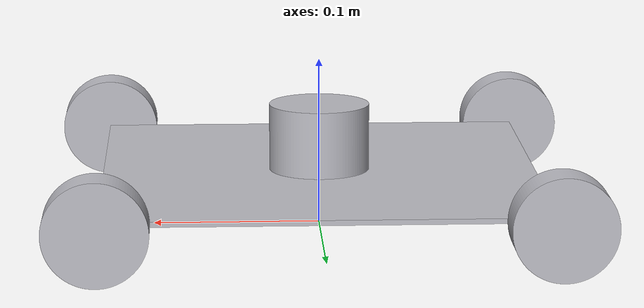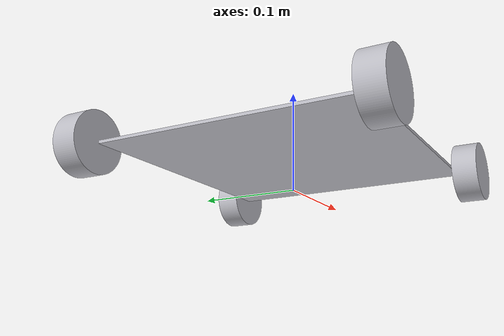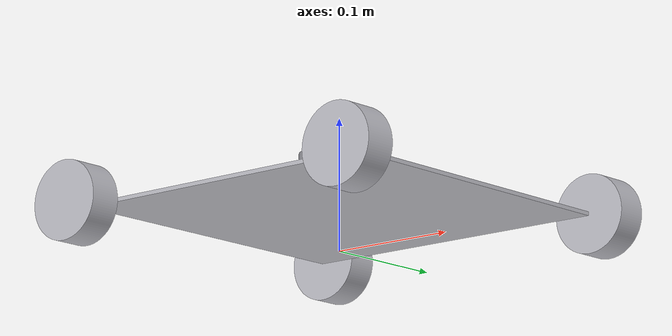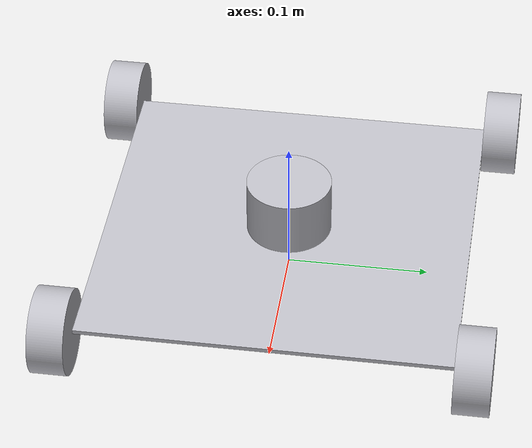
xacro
<?xml version="1.0" ?>
<robot name="test" xmlns:xacro="http://www.ros.org/wiki/xacro">

<xacro:include filename="$(find test_description)/urdf/materials.xacro" />
<xacro:include filename="$(find test_description)/urdf/test.trans" />
<xacro:include filename="$(find test_description)/urdf/test.gazebo" />
<link name="base_link">
  <inertial>
    <origin xyz="0.0 0.0 0.03149999999999999" rpy="0 0 0"/>
    <mass value="1.59198"/>
    <inertia ixx="0.008969" iyy="0.008969" izz="0.017936" ixy="0.0" iyz="0.0" ixz="0.0"/>
  </inertial>
  <visual>
    <origin xyz="0 0 0" rpy="0 0 0"/>
    <geometry>
      <mesh filename="file://$(find test_description)/meshes/base_link.stl" scale="0.001 0.001 0.001"/>
    </geometry>
    <material name="silver"/>
  </visual>
  <collision>
    <origin xyz="0 0 0" rpy="0 0 0"/>
    <geometry>
      <mesh filename="file://$(find test_description)/meshes/base_link.stl" scale="0.001 0.001 0.001"/>
    </geometry>
  </collision>
</link>

<link name="lidar_1">
  <inertial>
    <origin xyz="1.0052123437711858e-17 0.0 0.020000000000000004" rpy="0 0 0"/>
    <mass value="0.8878140839044752"/>
    <inertia ixx="0.000318" iyy="0.000318" izz="0.0004" ixy="0.0" iyz="0.0" ixz="0.0"/>
  </inertial>
  <visual>
    <origin xyz="-0.0 -0.0 -0.033" rpy="0 0 0"/>
    <geometry>
      <mesh filename="file://$(find test_description)/meshes/lidar_1.stl" scale="0.001 0.001 0.001"/>
    </geometry>
    <material name="silver"/>
  </visual>
  <collision>
    <origin xyz="-0.0 -0.0 -0.033" rpy="0 0 0"/>
    <geometry>
      <mesh filename="file://$(find test_description)/meshes/lidar_1.stl" scale="0.001 0.001 0.001"/>
    </geometry>
  </collision>
</link>

<link name="left_back_wheel_1">
  <inertial>
    <origin xyz="0.0 -0.012499999999999983 0.0" rpy="0 0 0"/>
    <mass value="0.5548838024402973"/>
    <inertia ixx="0.000154" iyy="0.00025" izz="0.000154" ixy="0.0" iyz="0.0" ixz="0.0"/>
  </inertial>
  <visual>
    <origin xyz="-0.13 0.13 -0.0315" rpy="0 0 0"/>
    <geometry>
      <mesh filename="file://$(find test_description)/meshes/left_back_wheel_1.stl" scale="0.001 0.001 0.001"/>
    </geometry>
    <material name="silver"/>
  </visual>
  <collision>
    <origin xyz="-0.13 0.13 -0.0315" rpy="0 0 0"/>
    <geometry>
      <mesh filename="file://$(find test_description)/meshes/left_back_wheel_1.stl" scale="0.001 0.001 0.001"/>
    </geometry>
  </collision>
</link>

<link name="right_back_wheel_1">
  <inertial>
    <origin xyz="0.0 0.012499999999999983 0.0" rpy="0 0 0"/>
    <mass value="0.5548838024402973"/>
    <inertia ixx="0.000154" iyy="0.00025" izz="0.000154" ixy="-0.0" iyz="0.0" ixz="0.0"/>
  </inertial>
  <visual>
    <origin xyz="-0.13 -0.13 -0.0315" rpy="0 0 0"/>
    <geometry>
      <mesh filename="file://$(find test_description)/meshes/right_back_wheel_1.stl" scale="0.001 0.001 0.001"/>
    </geometry>
    <material name="silver"/>
  </visual>
  <collision>
    <origin xyz="-0.13 -0.13 -0.0315" rpy="0 0 0"/>
    <geometry>
      <mesh filename="file://$(find test_description)/meshes/right_back_wheel_1.stl" scale="0.001 0.001 0.001"/>
    </geometry>
  </collision>
</link>

<link name="left_front_wheel_1">
  <inertial>
    <origin xyz="0.0 -0.012499999999999983 0.0" rpy="0 0 0"/>
    <mass value="0.5548838024402973"/>
    <inertia ixx="0.000154" iyy="0.00025" izz="0.000154" ixy="-0.0" iyz="0.0" ixz="-0.0"/>
  </inertial>
  <visual>
    <origin xyz="0.13 0.13 -0.0315" rpy="0 0 0"/>
    <geometry>
      <mesh filename="file://$(find test_description)/meshes/left_front_wheel_1.stl" scale="0.001 0.001 0.001"/>
    </geometry>
    <material name="silver"/>
  </visual>
  <collision>
    <origin xyz="0.13 0.13 -0.0315" rpy="0 0 0"/>
    <geometry>
      <mesh filename="file://$(find test_description)/meshes/left_front_wheel_1.stl" scale="0.001 0.001 0.001"/>
    </geometry>
  </collision>
</link>

<link name="right_front_wheel_1">
  <inertial>
    <origin xyz="0.0 0.012499999999999983 0.0" rpy="0 0 0"/>
    <mass value="0.5548838024402973"/>
    <inertia ixx="0.000154" iyy="0.00025" izz="0.000154" ixy="0.0" iyz="0.0" ixz="-0.0"/>
  </inertial>
  <visual>
    <origin xyz="0.13 -0.13 -0.0315" rpy="0 0 0"/>
    <geometry>
      <mesh filename="file://$(find test_description)/meshes/right_front_wheel_1.stl" scale="0.001 0.001 0.001"/>
    </geometry>
    <material name="silver"/>
  </visual>
  <collision>
    <origin xyz="0.13 -0.13 -0.0315" rpy="0 0 0"/>
    <geometry>
      <mesh filename="file://$(find test_description)/meshes/right_front_wheel_1.stl" scale="0.001 0.001 0.001"/>
    </geometry>
  </collision>
</link>

<joint name="Rigid 1" type="fixed">
  <origin xyz="0.0 0.0 0.033" rpy="0 0 0"/>
  <parent link="base_link"/>
  <child link="lidar_1"/>
</joint>

<joint name="base_left_back_wheel_joint" type="continuous">
  <origin xyz="0.13 -0.13 0.0315" rpy="0 0 0"/>
  <parent link="base_link"/>
  <child link="left_back_wheel_1"/>
  <axis xyz="0.0 1.0 0.0"/>
</joint>

<joint name="base_right_back_wheel_joint" type="continuous">
  <origin xyz="0.13 0.13 0.0315" rpy="0 0 0"/>
  <parent link="base_link"/>
  <child link="right_back_wheel_1"/>
  <axis xyz="0.0 1.0 0.0"/>
</joint>

<joint name="base_left_front_wheel_joint" type="continuous">
  <origin xyz="-0.13 -0.13 0.0315" rpy="0 0 0"/>
  <parent link="base_link"/>
  <child link="left_front_wheel_1"/>
  <axis xyz="0.0 1.0 0.0"/>
</joint>

<joint name="base_right_front_wheel_joint" type="continuous">
  <origin xyz="-0.13 0.13 0.0315" rpy="0 0 0"/>
  <parent link="base_link"/>
  <child link="right_front_wheel_1"/>
  <axis xyz="0.0 1.0 0.0"/>
</joint>

</robot>

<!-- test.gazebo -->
<robot name="test" xmlns:xacro="http://www.ros.org/wiki/xacro" >

<xacro:property name="body_color" value="Gazebo/Silver" />

<gazebo>
  <plugin name="control" filename="libgazebo_ros_control.so"/>
</gazebo>
<gazebo reference="base_link">
  <material>${body_color}</material>
  <mu1>0.2</mu1>
  <mu2>0.2</mu2>
  <self_collide>true</self_collide>
  <gravity>true</gravity>
</gazebo>

<gazebo reference="lidar_1">
  <material>${body_color}</material>
  <mu1>0.2</mu1>
  <mu2>0.2</mu2>
  <self_collide>true</self_collide>
</gazebo>

<gazebo reference="left_back_wheel_1">
  <material>${body_color}</material>
  <mu1>0.2</mu1>
  <mu2>0.2</mu2>
  <self_collide>true</self_collide>
</gazebo>

<gazebo reference="right_back_wheel_1">
  <material>${body_color}</material>
  <mu1>0.2</mu1>
  <mu2>0.2</mu2>
  <self_collide>true</self_collide>
</gazebo>

<gazebo reference="left_front_wheel_1">
  <material>${body_color}</material>
  <mu1>0.2</mu1>
  <mu2>0.2</mu2>
  <self_collide>true</self_collide>
</gazebo>

<gazebo reference="right_front_wheel_1">
  <material>${body_color}</material>
  <mu1>0.2</mu1>
  <mu2>0.2</mu2>
  <self_collide>true</self_collide>
</gazebo>

     <gazebo>
        <plugin name="diff_drive_controller" filename="libgazebo_ros_diff_drive.so">
            <!-- Update rate in Hz -->
            <update_rate>1000</update_rate>
            <!-- wheels -->
            <left_joint>base_right_front_wheel_joint</left_joint>
            <right_joint>base_left_front_wheel_joint</right_joint>
            <!-- kinematics -->
            <wheel_separation>0.26</wheel_separation>
            <wheel_diameter>0.06</wheel_diameter>
            <!-- output -->
            <publish_odom>true</publish_odom>
            <publish_odom_tf>true</publish_odom_tf>
            <publish_wheel_tf>true</publish_wheel_tf>
            <odometry_topic>odom</odometry_topic>
            <odometry_frame>odom</odometry_frame>
            <robot_base_frame>base_link</robot_base_frame>
        </plugin>
    </gazebo>

<gazebo reference="lidar_1">
    <sensor type="ray" name="rplidar">
      <pose>0 0 0 0 0 0</pose>
      <visualize>true</visualize>
      <update_rate>100</update_rate>
      <ray>
        <scan>
          <horizontal>
            <samples>720</samples>
            <resolution>1</resolution>
            <min_angle>0</min_angle>
            <max_angle>6.428</max_angle>
          </horizontal>
        </scan>
        <range>
          <min>0.225</min>
          <max>12.0</max>
          <resolution>0.01</resolution>
        </range>
        <noise>
          <type>gaussian</type>
          <mean>0.0</mean>
          <stddev>0.01</stddev>
        </noise>
      </ray>
      <plugin name="scan" filename="libgazebo_ros_ray_sensor.so">
          <ros>
            <remapping>~/out:=/scan</remapping>
          </ros>
          <output_type>sensor_msgs/LaserScan</output_type>
          <frame_name>lidar_1</frame_name>
        </plugin>
      </sensor>
    </gazebo>

</robot>
